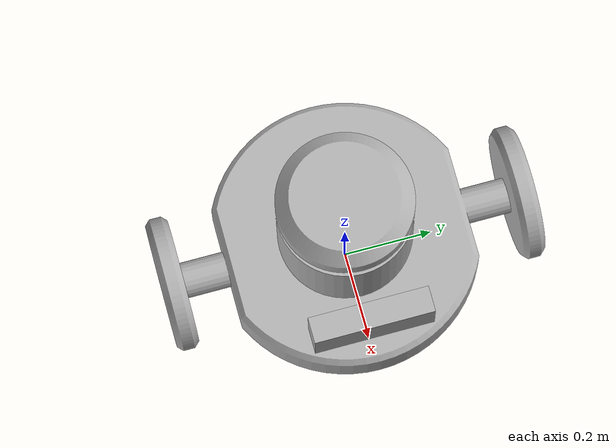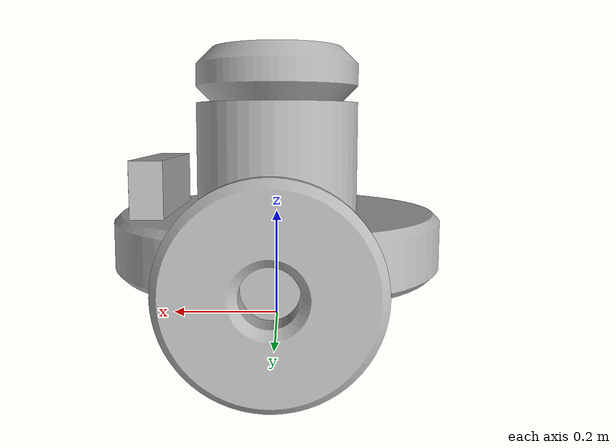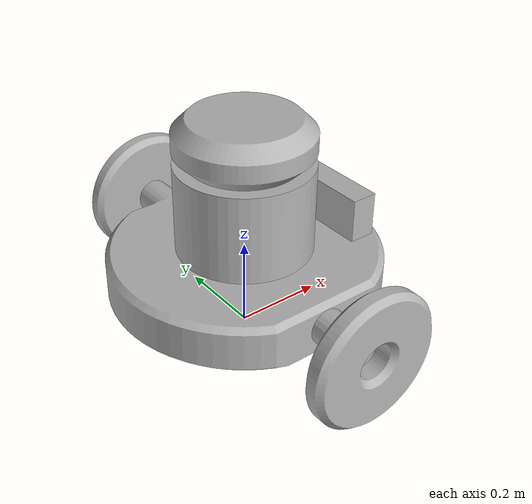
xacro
<?xml version="1.0" ?>
<robot name="practice_amr_with_camera" xmlns:xacro="http://www.ros.org/wiki/xacro">

<xacro:include filename="$(find practice_amr_with_camera_description)/urdf/materials.xacro" />
<xacro:include filename="$(find practice_amr_with_camera_description)/urdf/practice_amr_with_camera.trans" />
<xacro:include filename="$(find practice_amr_with_camera_description)/urdf/practice_amr_with_camera.gazebo" />
<link name="base_link">
  <inertial>
    <origin rpy="0 0 0" xyz="-5.277720631101894e-17 0.0 0.19915232097480318"/>
    <mass value="60.87974538645806"/>
    <inertia ixx="1.482057" ixy="0.0" ixz="-0.0" iyy="1.444802" iyz="0.0" izz="2.095154"/>
  </inertial>
  <visual>
    <origin rpy="0 0 0" xyz="0 0 0"/>
    <geometry>
      <mesh filename="package://practice_amr_with_camera_description/meshes/base_link.stl" scale="0.001 0.001 0.001"/>
    </geometry>
    <material name="silver"/>
  </visual>
  <collision>
    <origin rpy="0 0 0" xyz="0 0 0"/>
    <geometry>
      <mesh filename="package://practice_amr_with_camera_description/meshes/base_link.stl" scale="0.001 0.001 0.001"/>
    </geometry>
  </collision>
</link>

<link name="Wheel_left_1">
  <inertial>
    <origin rpy="0 0 0" xyz="0.0 0.024865996656190326 2.7755575615628914e-17"/>
    <mass value="5.125383982129923"/>
    <inertia ixx="0.031048" ixy="0.0" ixz="0.0" iyy="0.060081" iyz="-0.0" izz="0.031048"/>
  </inertial>
  <visual>
    <origin rpy="0 0 0" xyz="-0.0 -0.371492 -0.15"/>
    <geometry>
      <mesh filename="package://practice_amr_with_camera_description/meshes/Wheel_left_1.stl" scale="0.001 0.001 0.001"/>
    </geometry>
    <material name="silver"/>
  </visual>
  <collision>
    <origin rpy="0 0 0" xyz="-0.0 -0.371492 -0.15"/>
    <geometry>
      <mesh filename="package://practice_amr_with_camera_description/meshes/Wheel_left_1.stl" scale="0.001 0.001 0.001"/>
    </geometry>
  </collision>
</link>

<link name="Wheel_right_1">
  <inertial>
    <origin rpy="0 0 0" xyz="-4.6477464540982916e-17 -0.02486599665619027 0.0"/>
    <mass value="5.125383982129924"/>
    <inertia ixx="0.031048" ixy="-0.0" ixz="-0.0" iyy="0.060081" iyz="0.0" izz="0.031048"/>
  </inertial>
  <visual>
    <origin rpy="0 0 0" xyz="-0.0 0.371492 -0.15"/>
    <geometry>
      <mesh filename="package://practice_amr_with_camera_description/meshes/Wheel_right_1.stl" scale="0.001 0.001 0.001"/>
    </geometry>
    <material name="silver"/>
  </visual>
  <collision>
    <origin rpy="0 0 0" xyz="-0.0 0.371492 -0.15"/>
    <geometry>
      <mesh filename="package://practice_amr_with_camera_description/meshes/Wheel_right_1.stl" scale="0.001 0.001 0.001"/>
    </geometry>
  </collision>
</link>

<link name="Lidar_1">
  <inertial>
    <origin rpy="0 0 0" xyz="-4.636655135232854e-17 -2.318327567616427e-17 0.050000000000000044"/>
    <mass value="10.275288773505132"/>
    <inertia ixx="0.059813" ixy="-0.0" ixz="-0.0" iyy="0.059813" iyz="0.0" izz="0.104583"/>
  </inertial>
  <visual>
    <origin rpy="0 0 0" xyz="-0.0 -0.0 -0.4035"/>
    <geometry>
      <mesh filename="package://practice_amr_with_camera_description/meshes/Lidar_1.stl" scale="0.001 0.001 0.001"/>
    </geometry>
    <material name="silver"/>
  </visual>
  <collision>
    <origin rpy="0 0 0" xyz="-0.0 -0.0 -0.4035"/>
    <geometry>
      <mesh filename="package://practice_amr_with_camera_description/meshes/Lidar_1.stl" scale="0.001 0.001 0.001"/>
    </geometry>
  </collision>
</link>

<link name="castor_rear_1">
  <inertial>
    <origin rpy="0 0 0" xyz="-0.11999999999999997 2.926160208777979e-17 -0.03702750611246941"/>
    <mass value="12.145892654119544"/>
    <inertia ixx="0.025056" ixy="0.0" ixz="0.0" iyy="0.025056" iyz="0.0" izz="0.036582"/>
  </inertial>
  <visual>
    <origin rpy="0 0 0" xyz="-0.0 -0.0 -0.0965"/>
    <geometry>
      <mesh filename="package://practice_amr_with_camera_description/meshes/castor_rear_1.stl" scale="0.001 0.001 0.001"/>
    </geometry>
    <material name="silver"/>
  </visual>
  <collision>
    <origin rpy="0 0 0" xyz="-0.0 -0.0 -0.0965"/>
    <geometry>
      <mesh filename="package://practice_amr_with_camera_description/meshes/castor_rear_1.stl" scale="0.001 0.001 0.001"/>
    </geometry>
  </collision>
</link>

<link name="castor_front_1">
  <inertial>
    <origin rpy="0 0 0" xyz="0.12000000000000004 2.926160208777979e-17 -0.03702750611246941"/>
    <mass value="12.145892654119544"/>
    <inertia ixx="0.025056" ixy="0.0" ixz="0.0" iyy="0.025056" iyz="0.0" izz="0.036582"/>
  </inertial>
  <visual>
    <origin rpy="0 0 0" xyz="-0.0 -0.0 -0.0965"/>
    <geometry>
      <mesh filename="package://practice_amr_with_camera_description/meshes/castor_front_1.stl" scale="0.001 0.001 0.001"/>
    </geometry>
    <material name="silver"/>
  </visual>
  <collision>
    <origin rpy="0 0 0" xyz="-0.0 -0.0 -0.0965"/>
    <geometry>
      <mesh filename="package://practice_amr_with_camera_description/meshes/castor_front_1.stl" scale="0.001 0.001 0.001"/>
    </geometry>
  </collision>
</link>

<link name="camera_1">
  <inertial>
    <origin rpy="0 0 0" xyz="-0.07000021863312561 -1.0119579867850366e-06 0.05000000000000002"/>
    <mass value="2.2662572968115895"/>
    <inertia ixx="0.015708" ixy="0.0" ixz="0.0" iyy="0.002537" iyz="-0.0" izz="0.014468"/>
  </inertial>
  <visual>
    <origin rpy="0 0 0" xyz="-0.288 -0.0 -0.2035"/>
    <geometry>
      <mesh filename="package://practice_amr_with_camera_description/meshes/camera_1.stl" scale="0.001 0.001 0.001"/>
    </geometry>
    <material name="silver"/>
  </visual>
  <collision>
    <origin rpy="0 0 0" xyz="-0.288 -0.0 -0.2035"/>
    <geometry>
      <mesh filename="package://practice_amr_with_camera_description/meshes/camera_1.stl" scale="0.001 0.001 0.001"/>
    </geometry>
  </collision>
</link>

<joint name="left_wheel" type="continuous">
  <origin rpy="0 0 0" xyz="0.0 0.371492 0.15"/>
  <parent link="base_link"/>
  <child link="Wheel_left_1"/>
  <axis xyz="0.0 1.0 0.0"/>
</joint>

<joint name="right_wheel" type="continuous">
  <origin rpy="0 0 0" xyz="0.0 -0.371492 0.15"/>
  <parent link="base_link"/>
  <child link="Wheel_right_1"/>
  <axis xyz="0.0 -1.0 0.0"/>
</joint>

<joint name="lidar" type="fixed">
  <origin rpy="0 0 0" xyz="0.0 0.0 0.4035"/>
  <parent link="base_link"/>
  <child link="Lidar_1"/>
</joint>

<joint name="castor_1" type="fixed">
  <origin rpy="0 0 0" xyz="0.0 0.0 0.0965"/>
  <parent link="base_link"/>
  <child link="castor_rear_1"/>
</joint>

<joint name="castor_2" type="fixed">
  <origin rpy="0 0 0" xyz="0.0 0.0 0.0965"/>
  <parent link="base_link"/>
  <child link="castor_front_1"/>
</joint>

<joint name="camera" type="fixed">
  <origin rpy="0 0 0" xyz="0.288 0.0 0.2035"/>
  <parent link="base_link"/>
  <child link="camera_1"/>
</joint>

</robot>

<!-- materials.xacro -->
<robot name="practice_amr_with_camera" xmlns:xacro="http://www.ros.org/wiki/xacro" >

<material name="silver">
  <color rgba="0.700 0.700 0.700 1.000"/>
</material>

</robot>

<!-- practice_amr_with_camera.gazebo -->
<robot name="practice_amr_with_camera" xmlns:xacro="http://www.ros.org/wiki/xacro" >

<xacro:property name="body_color" value="Gazebo/Silver" />

<gazebo>
  <plugin filename="libgazebo_ros_control.so" name="control"/>
</gazebo>
<gazebo reference="base_link">
  <material>${body_color}</material>
  <mu1>0.2</mu1>
  <mu2>0.2</mu2>
  <selfCollide>true</selfCollide>
  <gravity>true</gravity>
</gazebo>

<gazebo reference="Wheel_left_1">
  <material>${body_color}</material>
  <mu1>0.2</mu1>
  <mu2>0.2</mu2>
  <selfCollide>true</selfCollide>
</gazebo>

<gazebo reference="Wheel_right_1">
  <material>${body_color}</material>
  <mu1>0.2</mu1>
  <mu2>0.2</mu2>
  <selfCollide>true</selfCollide>
</gazebo>

<gazebo reference="Lidar_1">
  <material>${body_color}</material>
  <mu1>0.2</mu1>
  <mu2>0.2</mu2>
  <selfCollide>true</selfCollide>
</gazebo>

<gazebo reference="castor_rear_1">
  <material>${body_color}</material>
  <mu1>0.2</mu1>
  <mu2>0.2</mu2>
  <selfCollide>true</selfCollide>
</gazebo>

<gazebo reference="castor_front_1">
  <material>${body_color}</material>
  <mu1>0.2</mu1>
  <mu2>0.2</mu2>
  <selfCollide>true</selfCollide>
</gazebo>

<gazebo reference="camera_1">
  <material>${body_color}</material>
  <mu1>0.2</mu1>
  <mu2>0.2</mu2>
  <selfCollide>true</selfCollide>
</gazebo>

</robot>
